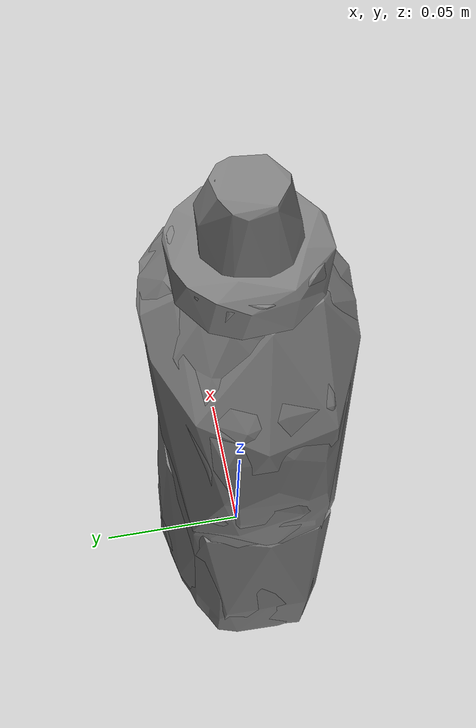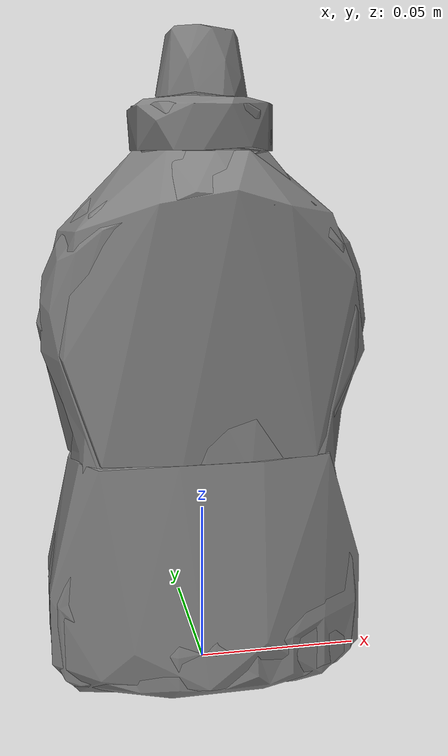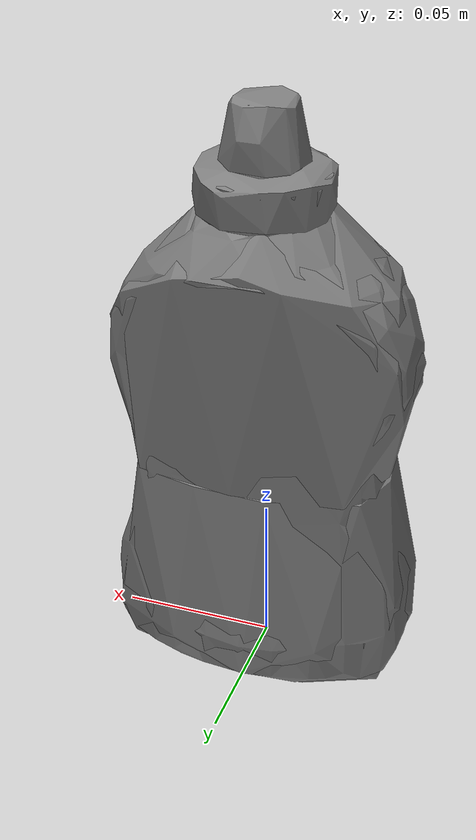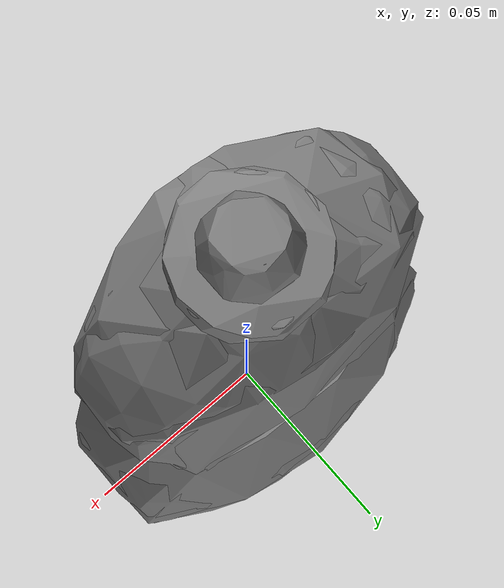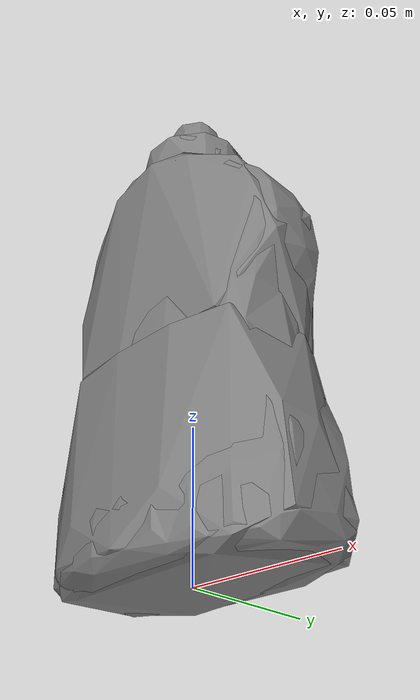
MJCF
<mujoco model="mustard_bottle">
  <asset>
    <mesh file="../../meshes/ycb/mustard_bottle/simple_mesh.stl" name="mustard_bottle_mesh" scale="1 1 1"/>
    <mesh file="../../meshes/ycb/mustard_bottle/mustard_bottle_hull_1.stl" name="mustard_bottle_hull_mesh_1" scale="1 1 1"/>
    <mesh file="../../meshes/ycb/mustard_bottle/mustard_bottle_hull_2.stl" name="mustard_bottle_hull_mesh_2" scale="1 1 1"/>
    <mesh file="../../meshes/ycb/mustard_bottle/mustard_bottle_hull_3.stl" name="mustard_bottle_hull_mesh_3" scale="1 1 1"/>
    <mesh file="../../meshes/ycb/mustard_bottle/mustard_bottle_hull_4.stl" name="mustard_bottle_hull_mesh_4" scale="1 1 1"/>
  </asset>
  <worldbody>
    <body>
      <body name="object">
        <geom pos="0 0 0" mesh="mustard_bottle_mesh" type="mesh" contype="0" conaffinity="0" group="1"/>
        <geom pos="0 0 0" mesh="mustard_bottle_hull_mesh_1" type="mesh" margin="0.001" solimp="0.998 0.998 0.001" solref="0.001 1" density="400" friction="0.95 0.3 0.1" group="0" condim="4"/>
        <geom pos="0 0 0" mesh="mustard_bottle_hull_mesh_2" type="mesh" margin="0.001" solimp="0.998 0.998 0.001" solref="0.001 1" density="400" friction="0.95 0.3 0.1" group="0" condim="4"/>
        <geom pos="0 0 0" mesh="mustard_bottle_hull_mesh_3" type="mesh" margin="0.001" solimp="0.998 0.998 0.001" solref="0.001 1" density="400" friction="0.95 0.3 0.1" group="0" condim="4"/>
        <geom pos="0 0 0" mesh="mustard_bottle_hull_mesh_4" type="mesh" margin="0.001" solimp="0.998 0.998 0.001" solref="0.001 1" density="400" friction="0.95 0.3 0.1" group="0" condim="4"/>
      </body>
      <site rgba="0 0 0 0" size="0.005" pos="0 0 -0.001" name="bottom_site"/>
      <site rgba="0 0 0 0" size="0.005" pos="0 0 0.02" name="top_site"/>
      <site rgba="0 0 0 0" size="0.005" pos="0.0375 0.02 0" name="horizontal_radius_site"/>
    </body>
  </worldbody>
</mujoco>
